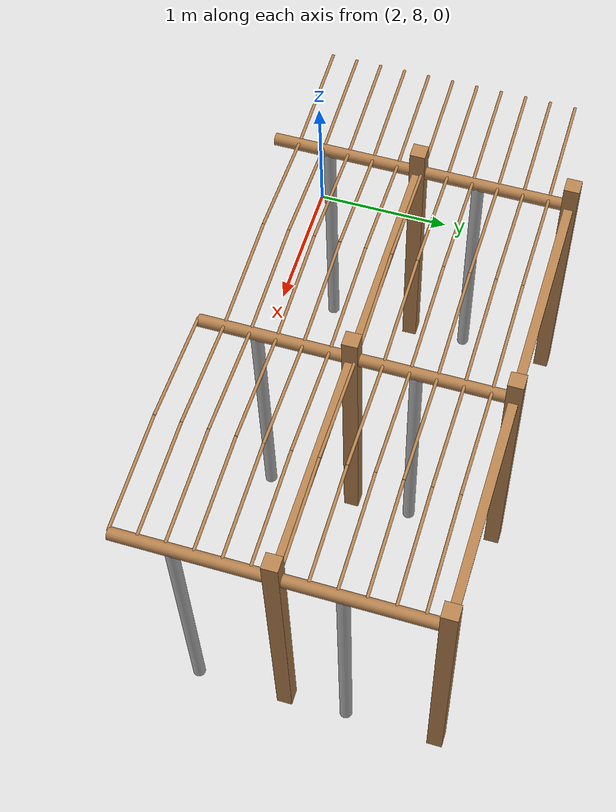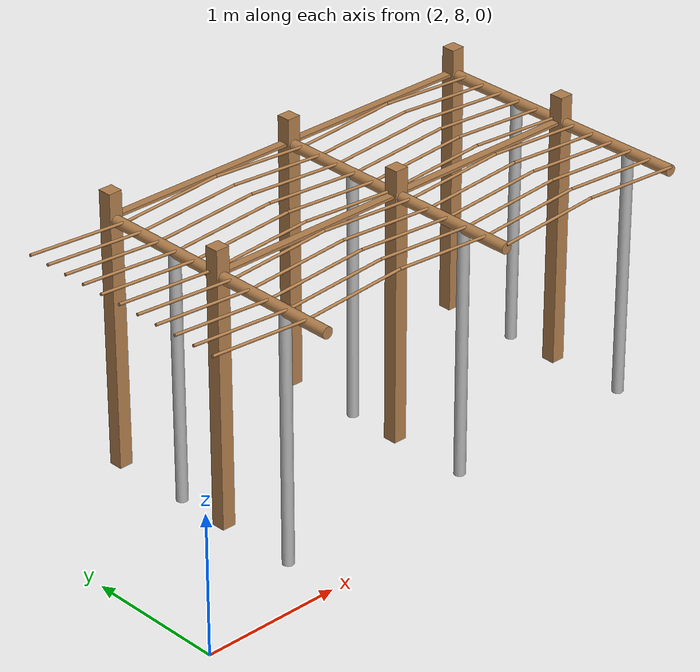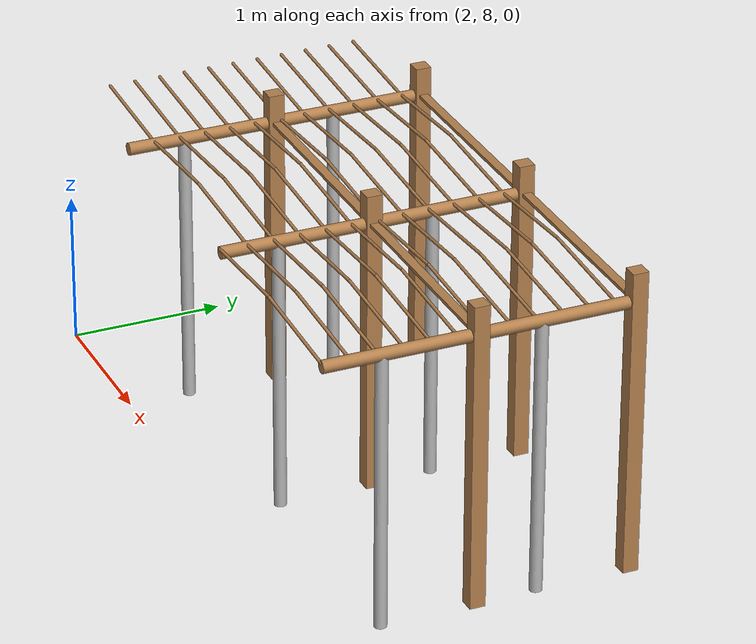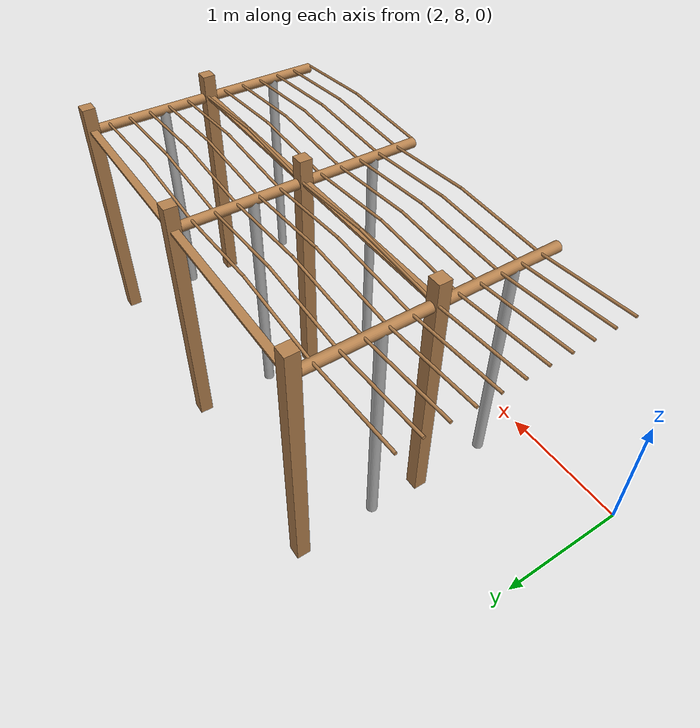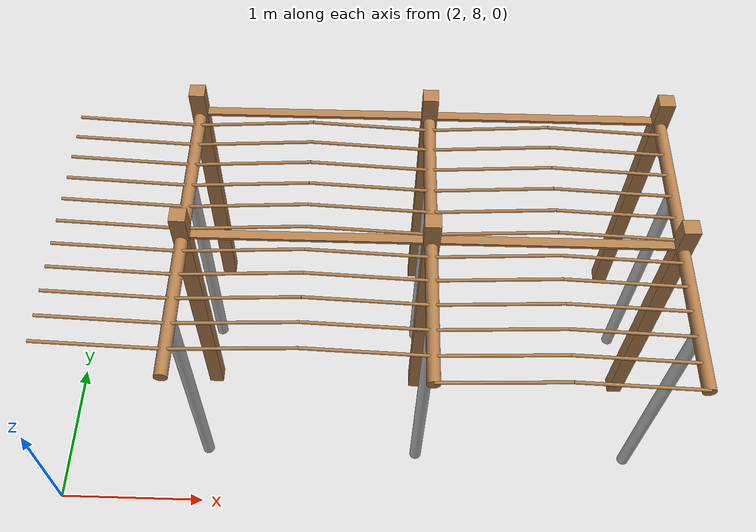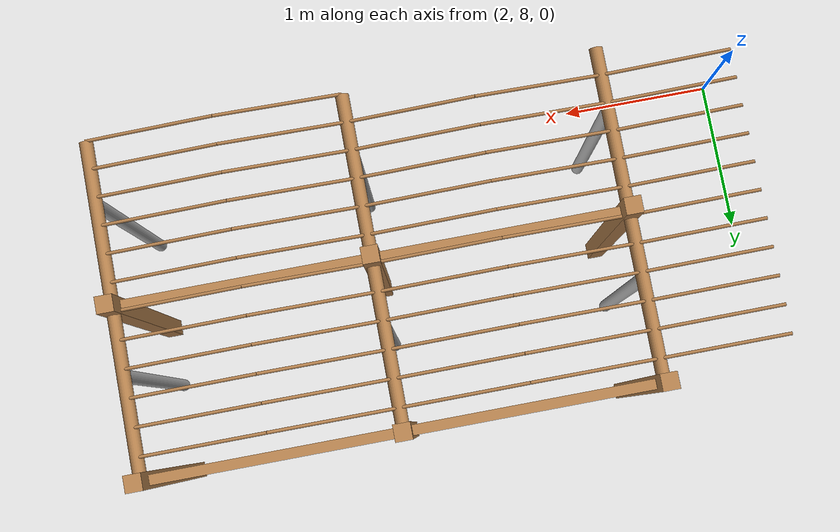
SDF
<sdf version="1.4">
 <model name="pergola">
  <include><name>post_31</name><pose>3.0 9.0 0 0 0 0</pose><uri>model://post</uri></include>
  <include><name>post_32</name><pose>3.0 10.0 0 0 0 0</pose><uri>model://post</uri></include>
  <include><name>post_42</name><pose>4.5 9.0 0 0 0 0</pose><uri>model://post</uri></include>
  <include><name>post_43</name><pose>4.5 10.0 0 0 0 0</pose><uri>model://post</uri></include>
  <include><name>post_53</name><pose>6.0 9.0 0 0 0 0</pose><uri>model://post</uri></include>
  <include><name>post_54</name><pose>6.0 10.0 0 0 0 0</pose><uri>model://post</uri></include>
  <link name="beam_31">
   <pose>3.75 9.0 1.81 0 0 0</pose>
   <collision name="collision"><geometry><box><size>1.5 0.06 0.02</size></box></geometry></collision>
   <visual name="visual">
    <geometry><box><size>1.5 0.06 0.02</size></box></geometry>
    <material><script><name>Gazebo/Wood</name></script></material>
   </visual>
   <inertial>
    <mass>5</mass>
    <inertia>
     <ixx>0.0016666666666666668</ixx>
     <ixy>0.0</ixy>
     <ixz>0.0</ixz>
     <iyy>0.9390000000000001</iyy>
     <iyz>0.0</iyz>
     <izz>0.9376666666666665</izz>
    </inertia>
   </inertial>
  </link>
  <link name="beam_32">
   <pose>3.75 10.0 1.81 0 0 0</pose>
   <collision name="collision"><geometry><box><size>1.5 0.06 0.02</size></box></geometry></collision>
   <visual name="visual">
    <geometry><box><size>1.5 0.06 0.02</size></box></geometry>
    <material><script><name>Gazebo/Wood</name></script></material>
   </visual>
   <inertial>
    <mass>5</mass>
    <inertia>
     <ixx>0.0016666666666666668</ixx>
     <ixy>0.0</ixy>
     <ixz>0.0</ixz>
     <iyy>0.9390000000000001</iyy>
     <iyz>0.0</iyz>
     <izz>0.9376666666666665</izz>
    </inertia>
   </inertial>
  </link>
  <link name="beam_42">
   <pose>5.25 9.0 1.81 0 0 0</pose>
   <collision name="collision"><geometry><box><size>1.5 0.06 0.02</size></box></geometry></collision>
   <visual name="visual">
    <geometry><box><size>1.5 0.06 0.02</size></box></geometry>
    <material><script><name>Gazebo/Wood</name></script></material>
   </visual>
   <inertial>
    <mass>5</mass>
    <inertia>
     <ixx>0.0016666666666666668</ixx>
     <ixy>0.0</ixy>
     <ixz>0.0</ixz>
     <iyy>0.9390000000000001</iyy>
     <iyz>0.0</iyz>
     <izz>0.9376666666666665</izz>
    </inertia>
   </inertial>
  </link>
  <link name="beam_43">
   <pose>5.25 10.0 1.81 0 0 0</pose>
   <collision name="collision"><geometry><box><size>1.5 0.06 0.02</size></box></geometry></collision>
   <visual name="visual">
    <geometry><box><size>1.5 0.06 0.02</size></box></geometry>
    <material><script><name>Gazebo/Wood</name></script></material>
   </visual>
   <inertial>
    <mass>5</mass>
    <inertia>
     <ixx>0.0016666666666666668</ixx>
     <ixy>0.0</ixy>
     <ixz>0.0</ixz>
     <iyy>0.9390000000000001</iyy>
     <iyz>0.0</iyz>
     <izz>0.9376666666666665</izz>
    </inertia>
   </inertial>
  </link>
  <include><name>tree_28</name><pose>3.0 8.4 0 0 0 0</pose><uri>model://tree_trunk</uri></include>
  <include><name>tree_29</name><pose>3.0 9.4 0 0 0 0</pose><uri>model://tree_trunk</uri></include>
  <include><name>tree_38</name><pose>4.5 8.4 0 0 0 0</pose><uri>model://tree_trunk</uri></include>
  <include><name>tree_39</name><pose>4.5 9.4 0 0 0 0</pose><uri>model://tree_trunk</uri></include>
  <include><name>tree_48</name><pose>6.0 8.4 0 0 0 0</pose><uri>model://tree_trunk</uri></include>
  <include><name>tree_49</name><pose>6.0 9.4 0 0 0 0</pose><uri>model://tree_trunk</uri></include>
  <link name="baseBranch_28">
   <pose>3.0 8.5 1.8 1.5707963267948966 0 0</pose>
   <collision name="collision">
    <geometry><cylinder><radius>0.04</radius><length>0.94</length></cylinder></geometry>
   </collision>
   <visual name="visual">
    <geometry><cylinder><radius>0.04</radius><length>0.94</length></cylinder></geometry>
    <material><script><name>Gazebo/WoodFloor</name></script></material>
   </visual>
   <inertial>
    <mass>10</mass>
    <inertia>
     <ixx>0.7403333333333334</ixx>
     <ixy>0.0</ixy>
     <ixz>0.0</ixz>
     <iyy>0.7403333333333334</iyy>
     <iyz>0.0</iyz>
     <izz>0.008</izz>
    </inertia>
   </inertial>
  </link>
  <link name="baseBranch_29">
   <pose>3.0 9.5 1.8 1.5707963267948966 0 0</pose>
   <collision name="collision">
    <geometry><cylinder><radius>0.04</radius><length>0.94</length></cylinder></geometry>
   </collision>
   <visual name="visual">
    <geometry><cylinder><radius>0.04</radius><length>0.94</length></cylinder></geometry>
    <material><script><name>Gazebo/WoodFloor</name></script></material>
   </visual>
   <inertial>
    <mass>10</mass>
    <inertia>
     <ixx>0.7403333333333334</ixx>
     <ixy>0.0</ixy>
     <ixz>0.0</ixz>
     <iyy>0.7403333333333334</iyy>
     <iyz>0.0</iyz>
     <izz>0.008</izz>
    </inertia>
   </inertial>
  </link>
  <link name="baseBranch_38">
   <pose>4.5 8.5 1.8 1.5707963267948966 0 0</pose>
   <collision name="collision">
    <geometry><cylinder><radius>0.04</radius><length>0.94</length></cylinder></geometry>
   </collision>
   <visual name="visual">
    <geometry><cylinder><radius>0.04</radius><length>0.94</length></cylinder></geometry>
    <material><script><name>Gazebo/WoodFloor</name></script></material>
   </visual>
   <inertial>
    <mass>10</mass>
    <inertia>
     <ixx>0.7403333333333334</ixx>
     <ixy>0.0</ixy>
     <ixz>0.0</ixz>
     <iyy>0.7403333333333334</iyy>
     <iyz>0.0</iyz>
     <izz>0.008</izz>
    </inertia>
   </inertial>
  </link>
  <link name="baseBranch_39">
   <pose>4.5 9.5 1.8 1.5707963267948966 0 0</pose>
   <collision name="collision">
    <geometry><cylinder><radius>0.04</radius><length>0.94</length></cylinder></geometry>
   </collision>
   <visual name="visual">
    <geometry><cylinder><radius>0.04</radius><length>0.94</length></cylinder></geometry>
    <material><script><name>Gazebo/WoodFloor</name></script></material>
   </visual>
   <inertial>
    <mass>10</mass>
    <inertia>
     <ixx>0.7403333333333334</ixx>
     <ixy>0.0</ixy>
     <ixz>0.0</ixz>
     <iyy>0.7403333333333334</iyy>
     <iyz>0.0</iyz>
     <izz>0.008</izz>
    </inertia>
   </inertial>
  </link>
  <link name="baseBranch_48">
   <pose>6.0 8.5 1.8 1.5707963267948966 0 0</pose>
   <collision name="collision">
    <geometry><cylinder><radius>0.04</radius><length>0.94</length></cylinder></geometry>
   </collision>
   <visual name="visual">
    <geometry><cylinder><radius>0.04</radius><length>0.94</length></cylinder></geometry>
    <material><script><name>Gazebo/WoodFloor</name></script></material>
   </visual>
   <inertial>
    <mass>10</mass>
    <inertia>
     <ixx>0.7403333333333334</ixx>
     <ixy>0.0</ixy>
     <ixz>0.0</ixz>
     <iyy>0.7403333333333334</iyy>
     <iyz>0.0</iyz>
     <izz>0.008</izz>
    </inertia>
   </inertial>
  </link>
  <link name="baseBranch_49">
   <pose>6.0 9.5 1.8 1.5707963267948966 0 0</pose>
   <collision name="collision">
    <geometry><cylinder><radius>0.04</radius><length>0.94</length></cylinder></geometry>
   </collision>
   <visual name="visual">
    <geometry><cylinder><radius>0.04</radius><length>0.94</length></cylinder></geometry>
    <material><script><name>Gazebo/WoodFloor</name></script></material>
   </visual>
   <inertial>
    <mass>10</mass>
    <inertia>
     <ixx>0.7403333333333334</ixx>
     <ixy>0.0</ixy>
     <ixz>0.0</ixz>
     <iyy>0.7403333333333334</iyy>
     <iyz>0.0</iyz>
     <izz>0.008</izz>
    </inertia>
   </inertial>
  </link>
  <link name="vine_219">
   <pose>2.625 8.196666666666665 1.85 0 -1.5042281630190728 0</pose>
   <collision name="collision">
    <geometry><cylinder><radius>0.01</radius><length>0.7516648189186453</length></cylinder></geometry>
   </collision>
   <visual name="visual">
    <geometry><cylinder><radius>0.01</radius><length>0.7516648189186453</length></cylinder></geometry>
    <material><script><name>Gazebo/WoodFloor</name></script></material>
   </visual>
   <inertial>
    <mass>5</mass>
    <inertia>
     <ixx>0.23554166666666657</ixx>
     <ixy>0.0</ixy>
     <ixz>0.0</ixz>
     <iyy>0.23554166666666657</iyy>
     <iyz>0.0</iyz>
     <izz>0.00025</izz>
    </inertia>
   </inertial>
  </link>
  <link name="vine_221">
   <pose>2.625 8.363333333333332 1.85 0 -1.5042281630190728 0</pose>
   <collision name="collision">
    <geometry><cylinder><radius>0.01</radius><length>0.7516648189186453</length></cylinder></geometry>
   </collision>
   <visual name="visual">
    <geometry><cylinder><radius>0.01</radius><length>0.7516648189186453</length></cylinder></geometry>
    <material><script><name>Gazebo/WoodFloor</name></script></material>
   </visual>
   <inertial>
    <mass>5</mass>
    <inertia>
     <ixx>0.23554166666666657</ixx>
     <ixy>0.0</ixy>
     <ixz>0.0</ixz>
     <iyy>0.23554166666666657</iyy>
     <iyz>0.0</iyz>
     <izz>0.00025</izz>
    </inertia>
   </inertial>
  </link>
  <link name="vine_223">
   <pose>2.625 8.53 1.85 0 -1.5042281630190728 0</pose>
   <collision name="collision">
    <geometry><cylinder><radius>0.01</radius><length>0.7516648189186453</length></cylinder></geometry>
   </collision>
   <visual name="visual">
    <geometry><cylinder><radius>0.01</radius><length>0.7516648189186453</length></cylinder></geometry>
    <material><script><name>Gazebo/WoodFloor</name></script></material>
   </visual>
   <inertial>
    <mass>5</mass>
    <inertia>
     <ixx>0.23554166666666657</ixx>
     <ixy>0.0</ixy>
     <ixz>0.0</ixz>
     <iyy>0.23554166666666657</iyy>
     <iyz>0.0</iyz>
     <izz>0.00025</izz>
    </inertia>
   </inertial>
  </link>
  <link name="vine_225">
   <pose>2.625 8.696666666666665 1.85 0 -1.5042281630190728 0</pose>
   <collision name="collision">
    <geometry><cylinder><radius>0.01</radius><length>0.7516648189186453</length></cylinder></geometry>
   </collision>
   <visual name="visual">
    <geometry><cylinder><radius>0.01</radius><length>0.7516648189186453</length></cylinder></geometry>
    <material><script><name>Gazebo/WoodFloor</name></script></material>
   </visual>
   <inertial>
    <mass>5</mass>
    <inertia>
     <ixx>0.23554166666666657</ixx>
     <ixy>0.0</ixy>
     <ixz>0.0</ixz>
     <iyy>0.23554166666666657</iyy>
     <iyz>0.0</iyz>
     <izz>0.00025</izz>
    </inertia>
   </inertial>
  </link>
  <link name="vine_227">
   <pose>2.625 8.863333333333332 1.85 0 -1.5042281630190728 0</pose>
   <collision name="collision">
    <geometry><cylinder><radius>0.01</radius><length>0.7516648189186453</length></cylinder></geometry>
   </collision>
   <visual name="visual">
    <geometry><cylinder><radius>0.01</radius><length>0.7516648189186453</length></cylinder></geometry>
    <material><script><name>Gazebo/WoodFloor</name></script></material>
   </visual>
   <inertial>
    <mass>5</mass>
    <inertia>
     <ixx>0.23554166666666657</ixx>
     <ixy>0.0</ixy>
     <ixz>0.0</ixz>
     <iyy>0.23554166666666657</iyy>
     <iyz>0.0</iyz>
     <izz>0.00025</izz>
    </inertia>
   </inertial>
  </link>
  <link name="vine_229">
   <pose>2.625 9.03 1.85 0 -1.5042281630190728 0</pose>
   <collision name="collision">
    <geometry><cylinder><radius>0.01</radius><length>0.7516648189186453</length></cylinder></geometry>
   </collision>
   <visual name="visual">
    <geometry><cylinder><radius>0.01</radius><length>0.7516648189186453</length></cylinder></geometry>
    <material><script><name>Gazebo/WoodFloor</name></script></material>
   </visual>
   <inertial>
    <mass>5</mass>
    <inertia>
     <ixx>0.23554166666666657</ixx>
     <ixy>0.0</ixy>
     <ixz>0.0</ixz>
     <iyy>0.23554166666666657</iyy>
     <iyz>0.0</iyz>
     <izz>0.00025</izz>
    </inertia>
   </inertial>
  </link>
  <link name="vine_231">
   <pose>2.625 9.196666666666665 1.85 0 -1.5042281630190728 0</pose>
   <collision name="collision">
    <geometry><cylinder><radius>0.01</radius><length>0.7516648189186453</length></cylinder></geometry>
   </collision>
   <visual name="visual">
    <geometry><cylinder><radius>0.01</radius><length>0.7516648189186453</length></cylinder></geometry>
    <material><script><name>Gazebo/WoodFloor</name></script></material>
   </visual>
   <inertial>
    <mass>5</mass>
    <inertia>
     <ixx>0.23554166666666657</ixx>
     <ixy>0.0</ixy>
     <ixz>0.0</ixz>
     <iyy>0.23554166666666657</iyy>
     <iyz>0.0</iyz>
     <izz>0.00025</izz>
    </inertia>
   </inertial>
  </link>
  <link name="vine_233">
   <pose>2.625 9.363333333333332 1.85 0 -1.5042281630190728 0</pose>
   <collision name="collision">
    <geometry><cylinder><radius>0.01</radius><length>0.7516648189186453</length></cylinder></geometry>
   </collision>
   <visual name="visual">
    <geometry><cylinder><radius>0.01</radius><length>0.7516648189186453</length></cylinder></geometry>
    <material><script><name>Gazebo/WoodFloor</name></script></material>
   </visual>
   <inertial>
    <mass>5</mass>
    <inertia>
     <ixx>0.23554166666666657</ixx>
     <ixy>0.0</ixy>
     <ixz>0.0</ixz>
     <iyy>0.23554166666666657</iyy>
     <iyz>0.0</iyz>
     <izz>0.00025</izz>
    </inertia>
   </inertial>
  </link>
  <link name="vine_235">
   <pose>2.625 9.53 1.85 0 -1.5042281630190728 0</pose>
   <collision name="collision">
    <geometry><cylinder><radius>0.01</radius><length>0.7516648189186453</length></cylinder></geometry>
   </collision>
   <visual name="visual">
    <geometry><cylinder><radius>0.01</radius><length>0.7516648189186453</length></cylinder></geometry>
    <material><script><name>Gazebo/WoodFloor</name></script></material>
   </visual>
   <inertial>
    <mass>5</mass>
    <inertia>
     <ixx>0.23554166666666657</ixx>
     <ixy>0.0</ixy>
     <ixz>0.0</ixz>
     <iyy>0.23554166666666657</iyy>
     <iyz>0.0</iyz>
     <izz>0.00025</izz>
    </inertia>
   </inertial>
  </link>
  <link name="vine_237">
   <pose>2.625 9.696666666666665 1.85 0 -1.5042281630190728 0</pose>
   <collision name="collision">
    <geometry><cylinder><radius>0.01</radius><length>0.7516648189186453</length></cylinder></geometry>
   </collision>
   <visual name="visual">
    <geometry><cylinder><radius>0.01</radius><length>0.7516648189186453</length></cylinder></geometry>
    <material><script><name>Gazebo/WoodFloor</name></script></material>
   </visual>
   <inertial>
    <mass>5</mass>
    <inertia>
     <ixx>0.23554166666666657</ixx>
     <ixy>0.0</ixy>
     <ixz>0.0</ixz>
     <iyy>0.23554166666666657</iyy>
     <iyz>0.0</iyz>
     <izz>0.00025</izz>
    </inertia>
   </inertial>
  </link>
  <link name="vine_239">
   <pose>2.625 9.863333333333332 1.85 0 -1.5042281630190728 0</pose>
   <collision name="collision">
    <geometry><cylinder><radius>0.01</radius><length>0.7516648189186453</length></cylinder></geometry>
   </collision>
   <visual name="visual">
    <geometry><cylinder><radius>0.01</radius><length>0.7516648189186453</length></cylinder></geometry>
    <material><script><name>Gazebo/WoodFloor</name></script></material>
   </visual>
   <inertial>
    <mass>5</mass>
    <inertia>
     <ixx>0.23554166666666657</ixx>
     <ixy>0.0</ixy>
     <ixz>0.0</ixz>
     <iyy>0.23554166666666657</iyy>
     <iyz>0.0</iyz>
     <izz>0.00025</izz>
    </inertia>
   </inertial>
  </link>
  <link name="vine_338">
   <pose>3.375 8.196666666666665 1.85 0 1.5042281630190728 0</pose>
   <collision name="collision">
    <geometry><cylinder><radius>0.01</radius><length>0.7516648189186453</length></cylinder></geometry>
   </collision>
   <visual name="visual">
    <geometry><cylinder><radius>0.01</radius><length>0.7516648189186453</length></cylinder></geometry>
    <material><script><name>Gazebo/WoodFloor</name></script></material>
   </visual>
   <inertial>
    <mass>5</mass>
    <inertia>
     <ixx>0.23554166666666657</ixx>
     <ixy>0.0</ixy>
     <ixz>0.0</ixz>
     <iyy>0.23554166666666657</iyy>
     <iyz>0.0</iyz>
     <izz>0.00025</izz>
    </inertia>
   </inertial>
  </link>
  <link name="vine_339">
   <pose>4.125 8.196666666666665 1.85 0 -1.5042281630190728 0</pose>
   <collision name="collision">
    <geometry><cylinder><radius>0.01</radius><length>0.7516648189186453</length></cylinder></geometry>
   </collision>
   <visual name="visual">
    <geometry><cylinder><radius>0.01</radius><length>0.7516648189186453</length></cylinder></geometry>
    <material><script><name>Gazebo/WoodFloor</name></script></material>
   </visual>
   <inertial>
    <mass>5</mass>
    <inertia>
     <ixx>0.23554166666666657</ixx>
     <ixy>0.0</ixy>
     <ixz>0.0</ixz>
     <iyy>0.23554166666666657</iyy>
     <iyz>0.0</iyz>
     <izz>0.00025</izz>
    </inertia>
   </inertial>
  </link>
  <link name="vine_340">
   <pose>3.375 8.363333333333332 1.85 0 1.5042281630190728 0</pose>
   <collision name="collision">
    <geometry><cylinder><radius>0.01</radius><length>0.7516648189186453</length></cylinder></geometry>
   </collision>
   <visual name="visual">
    <geometry><cylinder><radius>0.01</radius><length>0.7516648189186453</length></cylinder></geometry>
    <material><script><name>Gazebo/WoodFloor</name></script></material>
   </visual>
   <inertial>
    <mass>5</mass>
    <inertia>
     <ixx>0.23554166666666657</ixx>
     <ixy>0.0</ixy>
     <ixz>0.0</ixz>
     <iyy>0.23554166666666657</iyy>
     <iyz>0.0</iyz>
     <izz>0.00025</izz>
    </inertia>
   </inertial>
  </link>
  <link name="vine_341">
   <pose>4.125 8.363333333333332 1.85 0 -1.5042281630190728 0</pose>
   <collision name="collision">
    <geometry><cylinder><radius>0.01</radius><length>0.7516648189186453</length></cylinder></geometry>
   </collision>
   <visual name="visual">
    <geometry><cylinder><radius>0.01</radius><length>0.7516648189186453</length></cylinder></geometry>
    <material><script><name>Gazebo/WoodFloor</name></script></material>
   </visual>
   <inertial>
    <mass>5</mass>
    <inertia>
     <ixx>0.23554166666666657</ixx>
     <ixy>0.0</ixy>
     <ixz>0.0</ixz>
     <iyy>0.23554166666666657</iyy>
     <iyz>0.0</iyz>
     <izz>0.00025</izz>
    </inertia>
   </inertial>
  </link>
  <link name="vine_342">
   <pose>3.375 8.53 1.85 0 1.5042281630190728 0</pose>
   <collision name="collision">
    <geometry><cylinder><radius>0.01</radius><length>0.7516648189186453</length></cylinder></geometry>
   </collision>
   <visual name="visual">
    <geometry><cylinder><radius>0.01</radius><length>0.7516648189186453</length></cylinder></geometry>
    <material><script><name>Gazebo/WoodFloor</name></script></material>
   </visual>
   <inertial>
    <mass>5</mass>
    <inertia>
     <ixx>0.23554166666666657</ixx>
     <ixy>0.0</ixy>
     <ixz>0.0</ixz>
     <iyy>0.23554166666666657</iyy>
     <iyz>0.0</iyz>
     <izz>0.00025</izz>
    </inertia>
   </inertial>
  </link>
  <link name="vine_343">
   <pose>4.125 8.53 1.85 0 -1.5042281630190728 0</pose>
   <collision name="collision">
    <geometry><cylinder><radius>0.01</radius><length>0.7516648189186453</length></cylinder></geometry>
   </collision>
   <visual name="visual">
    <geometry><cylinder><radius>0.01</radius><length>0.7516648189186453</length></cylinder></geometry>
    <material><script><name>Gazebo/WoodFloor</name></script></material>
   </visual>
   <inertial>
    <mass>5</mass>
    <inertia>
     <ixx>0.23554166666666657</ixx>
     <ixy>0.0</ixy>
     <ixz>0.0</ixz>
     <iyy>0.23554166666666657</iyy>
     <iyz>0.0</iyz>
     <izz>0.00025</izz>
    </inertia>
   </inertial>
  </link>
  <link name="vine_344">
   <pose>3.375 8.696666666666665 1.85 0 1.5042281630190728 0</pose>
   <collision name="collision">
    <geometry><cylinder><radius>0.01</radius><length>0.7516648189186453</length></cylinder></geometry>
   </collision>
   <visual name="visual">
    <geometry><cylinder><radius>0.01</radius><length>0.7516648189186453</length></cylinder></geometry>
    <material><script><name>Gazebo/WoodFloor</name></script></material>
   </visual>
   <inertial>
    <mass>5</mass>
    <inertia>
     <ixx>0.23554166666666657</ixx>
     <ixy>0.0</ixy>
     <ixz>0.0</ixz>
     <iyy>0.23554166666666657</iyy>
     <iyz>0.0</iyz>
     <izz>0.00025</izz>
    </inertia>
   </inertial>
  </link>
  <link name="vine_345">
   <pose>4.125 8.696666666666665 1.85 0 -1.5042281630190728 0</pose>
   <collision name="collision">
    <geometry><cylinder><radius>0.01</radius><length>0.7516648189186453</length></cylinder></geometry>
   </collision>
   <visual name="visual">
    <geometry><cylinder><radius>0.01</radius><length>0.7516648189186453</length></cylinder></geometry>
    <material><script><name>Gazebo/WoodFloor</name></script></material>
   </visual>
   <inertial>
    <mass>5</mass>
    <inertia>
     <ixx>0.23554166666666657</ixx>
     <ixy>0.0</ixy>
     <ixz>0.0</ixz>
     <iyy>0.23554166666666657</iyy>
     <iyz>0.0</iyz>
     <izz>0.00025</izz>
    </inertia>
   </inertial>
  </link>
  <link name="vine_346">
   <pose>3.375 8.863333333333332 1.85 0 1.5042281630190728 0</pose>
   <collision name="collision">
    <geometry><cylinder><radius>0.01</radius><length>0.7516648189186453</length></cylinder></geometry>
   </collision>
   <visual name="visual">
    <geometry><cylinder><radius>0.01</radius><length>0.7516648189186453</length></cylinder></geometry>
    <material><script><name>Gazebo/WoodFloor</name></script></material>
   </visual>
   <inertial>
    <mass>5</mass>
    <inertia>
     <ixx>0.23554166666666657</ixx>
     <ixy>0.0</ixy>
     <ixz>0.0</ixz>
     <iyy>0.23554166666666657</iyy>
     <iyz>0.0</iyz>
     <izz>0.00025</izz>
    </inertia>
   </inertial>
  </link>
  <link name="vine_347">
   <pose>4.125 8.863333333333332 1.85 0 -1.5042281630190728 0</pose>
   <collision name="collision">
    <geometry><cylinder><radius>0.01</radius><length>0.7516648189186453</length></cylinder></geometry>
   </collision>
   <visual name="visual">
    <geometry><cylinder><radius>0.01</radius><length>0.7516648189186453</length></cylinder></geometry>
    <material><script><name>Gazebo/WoodFloor</name></script></material>
   </visual>
   <inertial>
    <mass>5</mass>
    <inertia>
     <ixx>0.23554166666666657</ixx>
     <ixy>0.0</ixy>
     <ixz>0.0</ixz>
     <iyy>0.23554166666666657</iyy>
     <iyz>0.0</iyz>
     <izz>0.00025</izz>
    </inertia>
   </inertial>
  </link>
  <link name="vine_348">
   <pose>3.375 9.03 1.85 0 1.5042281630190728 0</pose>
   <collision name="collision">
    <geometry><cylinder><radius>0.01</radius><length>0.7516648189186453</length></cylinder></geometry>
   </collision>
   <visual name="visual">
    <geometry><cylinder><radius>0.01</radius><length>0.7516648189186453</length></cylinder></geometry>
    <material><script><name>Gazebo/WoodFloor</name></script></material>
   </visual>
   <inertial>
    <mass>5</mass>
    <inertia>
     <ixx>0.23554166666666657</ixx>
     <ixy>0.0</ixy>
     <ixz>0.0</ixz>
     <iyy>0.23554166666666657</iyy>
     <iyz>0.0</iyz>
     <izz>0.00025</izz>
    </inertia>
   </inertial>
  </link>
  <link name="vine_349">
   <pose>4.125 9.03 1.85 0 -1.5042281630190728 0</pose>
   <collision name="collision">
    <geometry><cylinder><radius>0.01</radius><length>0.7516648189186453</length></cylinder></geometry>
   </collision>
   <visual name="visual">
    <geometry><cylinder><radius>0.01</radius><length>0.7516648189186453</length></cylinder></geometry>
    <material><script><name>Gazebo/WoodFloor</name></script></material>
   </visual>
   <inertial>
    <mass>5</mass>
    <inertia>
     <ixx>0.23554166666666657</ixx>
     <ixy>0.0</ixy>
     <ixz>0.0</ixz>
     <iyy>0.23554166666666657</iyy>
     <iyz>0.0</iyz>
     <izz>0.00025</izz>
    </inertia>
   </inertial>
  </link>
  <link name="vine_350">
   <pose>3.375 9.196666666666665 1.85 0 1.5042281630190728 0</pose>
   <collision name="collision">
    <geometry><cylinder><radius>0.01</radius><length>0.7516648189186453</length></cylinder></geometry>
   </collision>
   <visual name="visual">
    <geometry><cylinder><radius>0.01</radius><length>0.7516648189186453</length></cylinder></geometry>
    <material><script><name>Gazebo/WoodFloor</name></script></material>
   </visual>
   <inertial>
    <mass>5</mass>
    <inertia>
     <ixx>0.23554166666666657</ixx>
     <ixy>0.0</ixy>
     <ixz>0.0</ixz>
     <iyy>0.23554166666666657</iyy>
     <iyz>0.0</iyz>
     <izz>0.00025</izz>
    </inertia>
   </inertial>
  </link>
  <link name="vine_351">
   <pose>4.125 9.196666666666665 1.85 0 -1.5042281630190728 0</pose>
   <collision name="collision">
    <geometry><cylinder><radius>0.01</radius><length>0.7516648189186453</length></cylinder></geometry>
   </collision>
   <visual name="visual">
    <geometry><cylinder><radius>0.01</radius><length>0.7516648189186453</length></cylinder></geometry>
    <material><script><name>Gazebo/WoodFloor</name></script></material>
   </visual>
   <inertial>
    <mass>5</mass>
    <inertia>
     <ixx>0.23554166666666657</ixx>
     <ixy>0.0</ixy>
     <ixz>0.0</ixz>
     <iyy>0.23554166666666657</iyy>
     <iyz>0.0</iyz>
     <izz>0.00025</izz>
    </inertia>
   </inertial>
  </link>
  <link name="vine_352">
   <pose>3.375 9.363333333333332 1.85 0 1.5042281630190728 0</pose>
   <collision name="collision">
    <geometry><cylinder><radius>0.01</radius><length>0.7516648189186453</length></cylinder></geometry>
   </collision>
   <visual name="visual">
    <geometry><cylinder><radius>0.01</radius><length>0.7516648189186453</length></cylinder></geometry>
    <material><script><name>Gazebo/WoodFloor</name></script></material>
   </visual>
   <inertial>
    <mass>5</mass>
    <inertia>
     <ixx>0.23554166666666657</ixx>
     <ixy>0.0</ixy>
     <ixz>0.0</ixz>
     <iyy>0.23554166666666657</iyy>
     <iyz>0.0</iyz>
     <izz>0.00025</izz>
    </inertia>
   </inertial>
  </link>
  <link name="vine_353">
   <pose>4.125 9.363333333333332 1.85 0 -1.5042281630190728 0</pose>
   <collision name="collision">
    <geometry><cylinder><radius>0.01</radius><length>0.7516648189186453</length></cylinder></geometry>
   </collision>
   <visual name="visual">
    <geometry><cylinder><radius>0.01</radius><length>0.7516648189186453</length></cylinder></geometry>
    <material><script><name>Gazebo/WoodFloor</name></script></material>
   </visual>
   <inertial>
    <mass>5</mass>
    <inertia>
     <ixx>0.23554166666666657</ixx>
     <ixy>0.0</ixy>
     <ixz>0.0</ixz>
     <iyy>0.23554166666666657</iyy>
     <iyz>0.0</iyz>
     <izz>0.00025</izz>
    </inertia>
   </inertial>
  </link>
  <link name="vine_354">
   <pose>3.375 9.53 1.85 0 1.5042281630190728 0</pose>
   <collision name="collision">
    <geometry><cylinder><radius>0.01</radius><length>0.7516648189186453</length></cylinder></geometry>
   </collision>
   <visual name="visual">
    <geometry><cylinder><radius>0.01</radius><length>0.7516648189186453</length></cylinder></geometry>
    <material><script><name>Gazebo/WoodFloor</name></script></material>
   </visual>
   <inertial>
    <mass>5</mass>
    <inertia>
     <ixx>0.23554166666666657</ixx>
     <ixy>0.0</ixy>
     <ixz>0.0</ixz>
     <iyy>0.23554166666666657</iyy>
     <iyz>0.0</iyz>
     <izz>0.00025</izz>
    </inertia>
   </inertial>
  </link>
  <link name="vine_355">
   <pose>4.125 9.53 1.85 0 -1.5042281630190728 0</pose>
   <collision name="collision">
    <geometry><cylinder><radius>0.01</radius><length>0.7516648189186453</length></cylinder></geometry>
   </collision>
   <visual name="visual">
    <geometry><cylinder><radius>0.01</radius><length>0.7516648189186453</length></cylinder></geometry>
    <material><script><name>Gazebo/WoodFloor</name></script></material>
   </visual>
   <inertial>
    <mass>5</mass>
    <inertia>
     <ixx>0.23554166666666657</ixx>
     <ixy>0.0</ixy>
     <ixz>0.0</ixz>
     <iyy>0.23554166666666657</iyy>
     <iyz>0.0</iyz>
     <izz>0.00025</izz>
    </inertia>
   </inertial>
  </link>
  <link name="vine_356">
   <pose>3.375 9.696666666666665 1.85 0 1.5042281630190728 0</pose>
   <collision name="collision">
    <geometry><cylinder><radius>0.01</radius><length>0.7516648189186453</length></cylinder></geometry>
   </collision>
   <visual name="visual">
    <geometry><cylinder><radius>0.01</radius><length>0.7516648189186453</length></cylinder></geometry>
    <material><script><name>Gazebo/WoodFloor</name></script></material>
   </visual>
   <inertial>
    <mass>5</mass>
    <inertia>
     <ixx>0.23554166666666657</ixx>
     <ixy>0.0</ixy>
     <ixz>0.0</ixz>
     <iyy>0.23554166666666657</iyy>
     <iyz>0.0</iyz>
     <izz>0.00025</izz>
    </inertia>
   </inertial>
  </link>
  <link name="vine_357">
   <pose>4.125 9.696666666666665 1.85 0 -1.5042281630190728 0</pose>
   <collision name="collision">
    <geometry><cylinder><radius>0.01</radius><length>0.7516648189186453</length></cylinder></geometry>
   </collision>
   <visual name="visual">
    <geometry><cylinder><radius>0.01</radius><length>0.7516648189186453</length></cylinder></geometry>
    <material><script><name>Gazebo/WoodFloor</name></script></material>
   </visual>
   <inertial>
    <mass>5</mass>
    <inertia>
     <ixx>0.23554166666666657</ixx>
     <ixy>0.0</ixy>
     <ixz>0.0</ixz>
     <iyy>0.23554166666666657</iyy>
     <iyz>0.0</iyz>
     <izz>0.00025</izz>
    </inertia>
   </inertial>
  </link>
  <link name="vine_358">
   <pose>3.375 9.863333333333332 1.85 0 1.5042281630190728 0</pose>
   <collision name="collision">
    <geometry><cylinder><radius>0.01</radius><length>0.7516648189186453</length></cylinder></geometry>
   </collision>
   <visual name="visual">
    <geometry><cylinder><radius>0.01</radius><length>0.7516648189186453</length></cylinder></geometry>
    <material><script><name>Gazebo/WoodFloor</name></script></material>
   </visual>
   <inertial>
    <mass>5</mass>
    <inertia>
     <ixx>0.23554166666666657</ixx>
     <ixy>0.0</ixy>
     <ixz>0.0</ixz>
     <iyy>0.23554166666666657</iyy>
     <iyz>0.0</iyz>
     <izz>0.00025</izz>
    </inertia>
   </inertial>
  </link>
  <link name="vine_359">
   <pose>4.125 9.863333333333332 1.85 0 -1.5042281630190728 0</pose>
   <collision name="collision">
    <geometry><cylinder><radius>0.01</radius><length>0.7516648189186453</length></cylinder></geometry>
   </collision>
   <visual name="visual">
    <geometry><cylinder><radius>0.01</radius><length>0.7516648189186453</length></cylinder></geometry>
    <material><script><name>Gazebo/WoodFloor</name></script></material>
   </visual>
   <inertial>
    <mass>5</mass>
    <inertia>
     <ixx>0.23554166666666657</ixx>
     <ixy>0.0</ixy>
     <ixz>0.0</ixz>
     <iyy>0.23554166666666657</iyy>
     <iyz>0.0</iyz>
     <izz>0.00025</izz>
    </inertia>
   </inertial>
  </link>
  <link name="vine_456">
   <pose>4.875 8.03 1.85 0 1.5042281630190728 0</pose>
   <collision name="collision">
    <geometry><cylinder><radius>0.01</radius><length>0.7516648189186453</length></cylinder></geometry>
   </collision>
   <visual name="visual">
    <geometry><cylinder><radius>0.01</radius><length>0.7516648189186453</length></cylinder></geometry>
    <material><script><name>Gazebo/WoodFloor</name></script></material>
   </visual>
   <inertial>
    <mass>5</mass>
    <inertia>
     <ixx>0.23554166666666657</ixx>
     <ixy>0.0</ixy>
     <ixz>0.0</ixz>
     <iyy>0.23554166666666657</iyy>
     <iyz>0.0</iyz>
     <izz>0.00025</izz>
    </inertia>
   </inertial>
  </link>
  <link name="vine_457">
   <pose>5.625 8.03 1.85 0 -1.5042281630190728 0</pose>
   <collision name="collision">
    <geometry><cylinder><radius>0.01</radius><length>0.7516648189186453</length></cylinder></geometry>
   </collision>
   <visual name="visual">
    <geometry><cylinder><radius>0.01</radius><length>0.7516648189186453</length></cylinder></geometry>
    <material><script><name>Gazebo/WoodFloor</name></script></material>
   </visual>
   <inertial>
    <mass>5</mass>
    <inertia>
     <ixx>0.23554166666666657</ixx>
     <ixy>0.0</ixy>
     <ixz>0.0</ixz>
     <iyy>0.23554166666666657</iyy>
     <iyz>0.0</iyz>
     <izz>0.00025</izz>
    </inertia>
   </inertial>
  </link>
  <link name="vine_458">
   <pose>4.875 8.196666666666665 1.85 0 1.5042281630190728 0</pose>
   <collision name="collision">
    <geometry><cylinder><radius>0.01</radius><length>0.7516648189186453</length></cylinder></geometry>
   </collision>
   <visual name="visual">
    <geometry><cylinder><radius>0.01</radius><length>0.7516648189186453</length></cylinder></geometry>
    <material><script><name>Gazebo/WoodFloor</name></script></material>
   </visual>
   <inertial>
    <mass>5</mass>
    <inertia>
     <ixx>0.23554166666666657</ixx>
     <ixy>0.0</ixy>
     <ixz>0.0</ixz>
     <iyy>0.23554166666666657</iyy>
     <iyz>0.0</iyz>
     <izz>0.00025</izz>
    </inertia>
   </inertial>
  </link>
  <link name="vine_459">
   <pose>5.625 8.196666666666665 1.85 0 -1.5042281630190728 0</pose>
   <collision name="collision">
    <geometry><cylinder><radius>0.01</radius><length>0.7516648189186453</length></cylinder></geometry>
   </collision>
   <visual name="visual">
    <geometry><cylinder><radius>0.01</radius><length>0.7516648189186453</length></cylinder></geometry>
    <material><script><name>Gazebo/WoodFloor</name></script></material>
   </visual>
   <inertial>
    <mass>5</mass>
    <inertia>
     <ixx>0.23554166666666657</ixx>
     <ixy>0.0</ixy>
     <ixz>0.0</ixz>
     <iyy>0.23554166666666657</iyy>
     <iyz>0.0</iyz>
     <izz>0.00025</izz>
    </inertia>
   </inertial>
  </link>
  <link name="vine_460">
   <pose>4.875 8.363333333333332 1.85 0 1.5042281630190728 0</pose>
   <collision name="collision">
    <geometry><cylinder><radius>0.01</radius><length>0.7516648189186453</length></cylinder></geometry>
   </collision>
   <visual name="visual">
    <geometry><cylinder><radius>0.01</radius><length>0.7516648189186453</length></cylinder></geometry>
    <material><script><name>Gazebo/WoodFloor</name></script></material>
   </visual>
   <inertial>
    <mass>5</mass>
    <inertia>
     <ixx>0.23554166666666657</ixx>
     <ixy>0.0</ixy>
     <ixz>0.0</ixz>
     <iyy>0.23554166666666657</iyy>
     <iyz>0.0</iyz>
     <izz>0.00025</izz>
    </inertia>
   </inertial>
  </link>
  <link name="vine_461">
   <pose>5.625 8.363333333333332 1.85 0 -1.5042281630190728 0</pose>
   <collision name="collision">
    <geometry><cylinder><radius>0.01</radius><length>0.7516648189186453</length></cylinder></geometry>
   </collision>
   <visual name="visual">
    <geometry><cylinder><radius>0.01</radius><length>0.7516648189186453</length></cylinder></geometry>
    <material><script><name>Gazebo/WoodFloor</name></script></material>
   </visual>
   <inertial>
    <mass>5</mass>
    <inertia>
     <ixx>0.23554166666666657</ixx>
     <ixy>0.0</ixy>
     <ixz>0.0</ixz>
     <iyy>0.23554166666666657</iyy>
     <iyz>0.0</iyz>
     <izz>0.00025</izz>
    </inertia>
   </inertial>
  </link>
  <link name="vine_462">
   <pose>4.875 8.53 1.85 0 1.5042281630190728 0</pose>
   <collision name="collision">
    <geometry><cylinder><radius>0.01</radius><length>0.7516648189186453</length></cylinder></geometry>
   </collision>
   <visual name="visual">
    <geometry><cylinder><radius>0.01</radius><length>0.7516648189186453</length></cylinder></geometry>
    <material><script><name>Gazebo/WoodFloor</name></script></material>
   </visual>
   <inertial>
    <mass>5</mass>
    <inertia>
     <ixx>0.23554166666666657</ixx>
     <ixy>0.0</ixy>
     <ixz>0.0</ixz>
     <iyy>0.23554166666666657</iyy>
     <iyz>0.0</iyz>
     <izz>0.00025</izz>
    </inertia>
   </inertial>
  </link>
  <link name="vine_463">
   <pose>5.625 8.53 1.85 0 -1.5042281630190728 0</pose>
   <collision name="collision">
    <geometry><cylinder><radius>0.01</radius><length>0.7516648189186453</length></cylinder></geometry>
   </collision>
   <visual name="visual">
    <geometry><cylinder><radius>0.01</radius><length>0.7516648189186453</length></cylinder></geometry>
    <material><script><name>Gazebo/WoodFloor</name></script></material>
   </visual>
   <inertial>
    <mass>5</mass>
    <inertia>
     <ixx>0.23554166666666657</ixx>
     <ixy>0.0</ixy>
     <ixz>0.0</ixz>
     <iyy>0.23554166666666657</iyy>
     <iyz>0.0</iyz>
     <izz>0.00025</izz>
    </inertia>
   </inertial>
  </link>
  <link name="vine_464">
   <pose>4.875 8.696666666666665 1.85 0 1.5042281630190728 0</pose>
   <collision name="collision">
    <geometry><cylinder><radius>0.01</radius><length>0.7516648189186453</length></cylinder></geometry>
   </collision>
   <visual name="visual">
    <geometry><cylinder><radius>0.01</radius><length>0.7516648189186453</length></cylinder></geometry>
    <material><script><name>Gazebo/WoodFloor</name></script></material>
   </visual>
   <inertial>
    <mass>5</mass>
    <inertia>
     <ixx>0.23554166666666657</ixx>
     <ixy>0.0</ixy>
     <ixz>0.0</ixz>
     <iyy>0.23554166666666657</iyy>
     <iyz>0.0</iyz>
     <izz>0.00025</izz>
    </inertia>
   </inertial>
  </link>
  <link name="vine_465">
   <pose>5.625 8.696666666666665 1.85 0 -1.5042281630190728 0</pose>
   <collision name="collision">
    <geometry><cylinder><radius>0.01</radius><length>0.7516648189186453</length></cylinder></geometry>
   </collision>
   <visual name="visual">
    <geometry><cylinder><radius>0.01</radius><length>0.7516648189186453</length></cylinder></geometry>
    <material><script><name>Gazebo/WoodFloor</name></script></material>
   </visual>
   <inertial>
    <mass>5</mass>
    <inertia>
     <ixx>0.23554166666666657</ixx>
     <ixy>0.0</ixy>
     <ixz>0.0</ixz>
     <iyy>0.23554166666666657</iyy>
     <iyz>0.0</iyz>
     <izz>0.00025</izz>
    </inertia>
   </inertial>
  </link>
  <link name="vine_466">
   <pose>4.875 8.863333333333332 1.85 0 1.5042281630190728 0</pose>
   <collision name="collision">
    <geometry><cylinder><radius>0.01</radius><length>0.7516648189186453</length></cylinder></geometry>
   </collision>
   <visual name="visual">
    <geometry><cylinder><radius>0.01</radius><length>0.7516648189186453</length></cylinder></geometry>
    <material><script><name>Gazebo/WoodFloor</name></script></material>
   </visual>
   <inertial>
    <mass>5</mass>
    <inertia>
     <ixx>0.23554166666666657</ixx>
     <ixy>0.0</ixy>
     <ixz>0.0</ixz>
     <iyy>0.23554166666666657</iyy>
     <iyz>0.0</iyz>
     <izz>0.00025</izz>
    </inertia>
   </inertial>
  </link>
  <link name="vine_467">
   <pose>5.625 8.863333333333332 1.85 0 -1.5042281630190728 0</pose>
   <collision name="collision">
    <geometry><cylinder><radius>0.01</radius><length>0.7516648189186453</length></cylinder></geometry>
   </collision>
   <visual name="visual">
    <geometry><cylinder><radius>0.01</radius><length>0.7516648189186453</length></cylinder></geometry>
    <material><script><name>Gazebo/WoodFloor</name></script></material>
   </visual>
   <inertial>
    <mass>5</mass>
    <inertia>
     <ixx>0.23554166666666657</ixx>
     <ixy>0.0</ixy>
     <ixz>0.0</ixz>
     <iyy>0.23554166666666657</iyy>
     <iyz>0.0</iyz>
     <izz>0.00025</izz>
    </inertia>
   </inertial>
  </link>
  <link name="vine_468">
   <pose>4.875 9.03 1.85 0 1.5042281630190728 0</pose>
   <collision name="collision">
    <geometry><cylinder><radius>0.01</radius><length>0.7516648189186453</length></cylinder></geometry>
   </collision>
   <visual name="visual">
    <geometry><cylinder><radius>0.01</radius><length>0.7516648189186453</length></cylinder></geometry>
    <material><script><name>Gazebo/WoodFloor</name></script></material>
   </visual>
   <inertial>
    <mass>5</mass>
    <inertia>
     <ixx>0.23554166666666657</ixx>
     <ixy>0.0</ixy>
     <ixz>0.0</ixz>
     <iyy>0.23554166666666657</iyy>
     <iyz>0.0</iyz>
     <izz>0.00025</izz>
    </inertia>
   </inertial>
  </link>
  <link name="vine_469">
   <pose>5.625 9.03 1.85 0 -1.5042281630190728 0</pose>
   <collision name="collision">
    <geometry><cylinder><radius>0.01</radius><length>0.7516648189186453</length></cylinder></geometry>
   </collision>
   <visual name="visual">
    <geometry><cylinder><radius>0.01</radius><length>0.7516648189186453</length></cylinder></geometry>
    <material><script><name>Gazebo/WoodFloor</name></script></material>
   </visual>
   <inertial>
    <mass>5</mass>
    <inertia>
     <ixx>0.23554166666666657</ixx>
     <ixy>0.0</ixy>
     <ixz>0.0</ixz>
     <iyy>0.23554166666666657</iyy>
     <iyz>0.0</iyz>
     <izz>0.00025</izz>
    </inertia>
   </inertial>
  </link>
  <link name="vine_470">
   <pose>4.875 9.196666666666665 1.85 0 1.5042281630190728 0</pose>
   <collision name="collision">
    <geometry><cylinder><radius>0.01</radius><length>0.7516648189186453</length></cylinder></geometry>
   </collision>
   <visual name="visual">
    <geometry><cylinder><radius>0.01</radius><length>0.7516648189186453</length></cylinder></geometry>
    <material><script><name>Gazebo/WoodFloor</name></script></material>
   </visual>
   <inertial>
    <mass>5</mass>
    <inertia>
     <ixx>0.23554166666666657</ixx>
     <ixy>0.0</ixy>
     <ixz>0.0</ixz>
     <iyy>0.23554166666666657</iyy>
     <iyz>0.0</iyz>
     <izz>0.00025</izz>
    </inertia>
   </inertial>
  </link>
  <link name="vine_471">
   <pose>5.625 9.196666666666665 1.85 0 -1.5042281630190728 0</pose>
   <collision name="collision">
    <geometry><cylinder><radius>0.01</radius><length>0.7516648189186453</length></cylinder></geometry>
   </collision>
   <visual name="visual">
    <geometry><cylinder><radius>0.01</radius><length>0.7516648189186453</length></cylinder></geometry>
    <material><script><name>Gazebo/WoodFloor</name></script></material>
   </visual>
   <inertial>
    <mass>5</mass>
    <inertia>
     <ixx>0.23554166666666657</ixx>
     <ixy>0.0</ixy>
     <ixz>0.0</ixz>
     <iyy>0.23554166666666657</iyy>
     <iyz>0.0</iyz>
     <izz>0.00025</izz>
    </inertia>
   </inertial>
  </link>
  <link name="vine_472">
   <pose>4.875 9.363333333333332 1.85 0 1.5042281630190728 0</pose>
   <collision name="collision">
    <geometry><cylinder><radius>0.01</radius><length>0.7516648189186453</length></cylinder></geometry>
   </collision>
   <visual name="visual">
    <geometry><cylinder><radius>0.01</radius><length>0.7516648189186453</length></cylinder></geometry>
    <material><script><name>Gazebo/WoodFloor</name></script></material>
   </visual>
   <inertial>
    <mass>5</mass>
    <inertia>
     <ixx>0.23554166666666657</ixx>
     <ixy>0.0</ixy>
     <ixz>0.0</ixz>
     <iyy>0.23554166666666657</iyy>
     <iyz>0.0</iyz>
     <izz>0.00025</izz>
    </inertia>
   </inertial>
  </link>
  <link name="vine_473">
   <pose>5.625 9.363333333333332 1.85 0 -1.5042281630190728 0</pose>
   <collision name="collision">
    <geometry><cylinder><radius>0.01</radius><length>0.7516648189186453</length></cylinder></geometry>
   </collision>
   <visual name="visual">
    <geometry><cylinder><radius>0.01</radius><length>0.7516648189186453</length></cylinder></geometry>
    <material><script><name>Gazebo/WoodFloor</name></script></material>
   </visual>
   <inertial>
    <mass>5</mass>
    <inertia>
     <ixx>0.23554166666666657</ixx>
     <ixy>0.0</ixy>
     <ixz>0.0</ixz>
     <iyy>0.23554166666666657</iyy>
     <iyz>0.0</iyz>
     <izz>0.00025</izz>
    </inertia>
   </inertial>
  </link>
  <link name="vine_474">
   <pose>4.875 9.53 1.85 0 1.5042281630190728 0</pose>
   <collision name="collision">
    <geometry><cylinder><radius>0.01</radius><length>0.7516648189186453</length></cylinder></geometry>
   </collision>
   <visual name="visual">
    <geometry><cylinder><radius>0.01</radius><length>0.7516648189186453</length></cylinder></geometry>
    <material><script><name>Gazebo/WoodFloor</name></script></material>
   </visual>
   <inertial>
    <mass>5</mass>
    <inertia>
     <ixx>0.23554166666666657</ixx>
     <ixy>0.0</ixy>
     <ixz>0.0</ixz>
     <iyy>0.23554166666666657</iyy>
     <iyz>0.0</iyz>
     <izz>0.00025</izz>
    </inertia>
   </inertial>
  </link>
  <link name="vine_475">
   <pose>5.625 9.53 1.85 0 -1.5042281630190728 0</pose>
   <collision name="collision">
    <geometry><cylinder><radius>0.01</radius><length>0.7516648189186453</length></cylinder></geometry>
   </collision>
   <visual name="visual">
    <geometry><cylinder><radius>0.01</radius><length>0.7516648189186453</length></cylinder></geometry>
    <material><script><name>Gazebo/WoodFloor</name></script></material>
   </visual>
   <inertial>
    <mass>5</mass>
    <inertia>
     <ixx>0.23554166666666657</ixx>
     <ixy>0.0</ixy>
     <ixz>0.0</ixz>
     <iyy>0.23554166666666657</iyy>
     <iyz>0.0</iyz>
     <izz>0.00025</izz>
    </inertia>
   </inertial>
  </link>
  <link name="vine_476">
   <pose>4.875 9.696666666666665 1.85 0 1.5042281630190728 0</pose>
   <collision name="collision">
    <geometry><cylinder><radius>0.01</radius><length>0.7516648189186453</length></cylinder></geometry>
   </collision>
   <visual name="visual">
    <geometry><cylinder><radius>0.01</radius><length>0.7516648189186453</length></cylinder></geometry>
    <material><script><name>Gazebo/WoodFloor</name></script></material>
   </visual>
   <inertial>
    <mass>5</mass>
    <inertia>
     <ixx>0.23554166666666657</ixx>
     <ixy>0.0</ixy>
     <ixz>0.0</ixz>
     <iyy>0.23554166666666657</iyy>
     <iyz>0.0</iyz>
     <izz>0.00025</izz>
    </inertia>
   </inertial>
  </link>
  <link name="vine_477">
   <pose>5.625 9.696666666666665 1.85 0 -1.5042281630190728 0</pose>
   <collision name="collision">
    <geometry><cylinder><radius>0.01</radius><length>0.7516648189186453</length></cylinder></geometry>
   </collision>
   <visual name="visual">
    <geometry><cylinder><radius>0.01</radius><length>0.7516648189186453</length></cylinder></geometry>
    <material><script><name>Gazebo/WoodFloor</name></script></material>
   </visual>
   <inertial>
    <mass>5</mass>
    <inertia>
     <ixx>0.23554166666666657</ixx>
     <ixy>0.0</ixy>
     <ixz>0.0</ixz>
     <iyy>0.23554166666666657</iyy>
     <iyz>0.0</iyz>
     <izz>0.00025</izz>
    </inertia>
   </inertial>
  </link>
  <link name="vine_478">
   <pose>4.875 9.863333333333332 1.85 0 1.5042281630190728 0</pose>
   <collision name="collision">
    <geometry><cylinder><radius>0.01</radius><length>0.7516648189186453</length></cylinder></geometry>
   </collision>
   <visual name="visual">
    <geometry><cylinder><radius>0.01</radius><length>0.7516648189186453</length></cylinder></geometry>
    <material><script><name>Gazebo/WoodFloor</name></script></material>
   </visual>
   <inertial>
    <mass>5</mass>
    <inertia>
     <ixx>0.23554166666666657</ixx>
     <ixy>0.0</ixy>
     <ixz>0.0</ixz>
     <iyy>0.23554166666666657</iyy>
     <iyz>0.0</iyz>
     <izz>0.00025</izz>
    </inertia>
   </inertial>
  </link>
  <link name="vine_479">
   <pose>5.625 9.863333333333332 1.85 0 -1.5042281630190728 0</pose>
   <collision name="collision">
    <geometry><cylinder><radius>0.01</radius><length>0.7516648189186453</length></cylinder></geometry>
   </collision>
   <visual name="visual">
    <geometry><cylinder><radius>0.01</radius><length>0.7516648189186453</length></cylinder></geometry>
    <material><script><name>Gazebo/WoodFloor</name></script></material>
   </visual>
   <inertial>
    <mass>5</mass>
    <inertia>
     <ixx>0.23554166666666657</ixx>
     <ixy>0.0</ixy>
     <ixz>0.0</ixz>
     <iyy>0.23554166666666657</iyy>
     <iyz>0.0</iyz>
     <izz>0.00025</izz>
    </inertia>
   </inertial>
  </link>
 </model>
</sdf>
